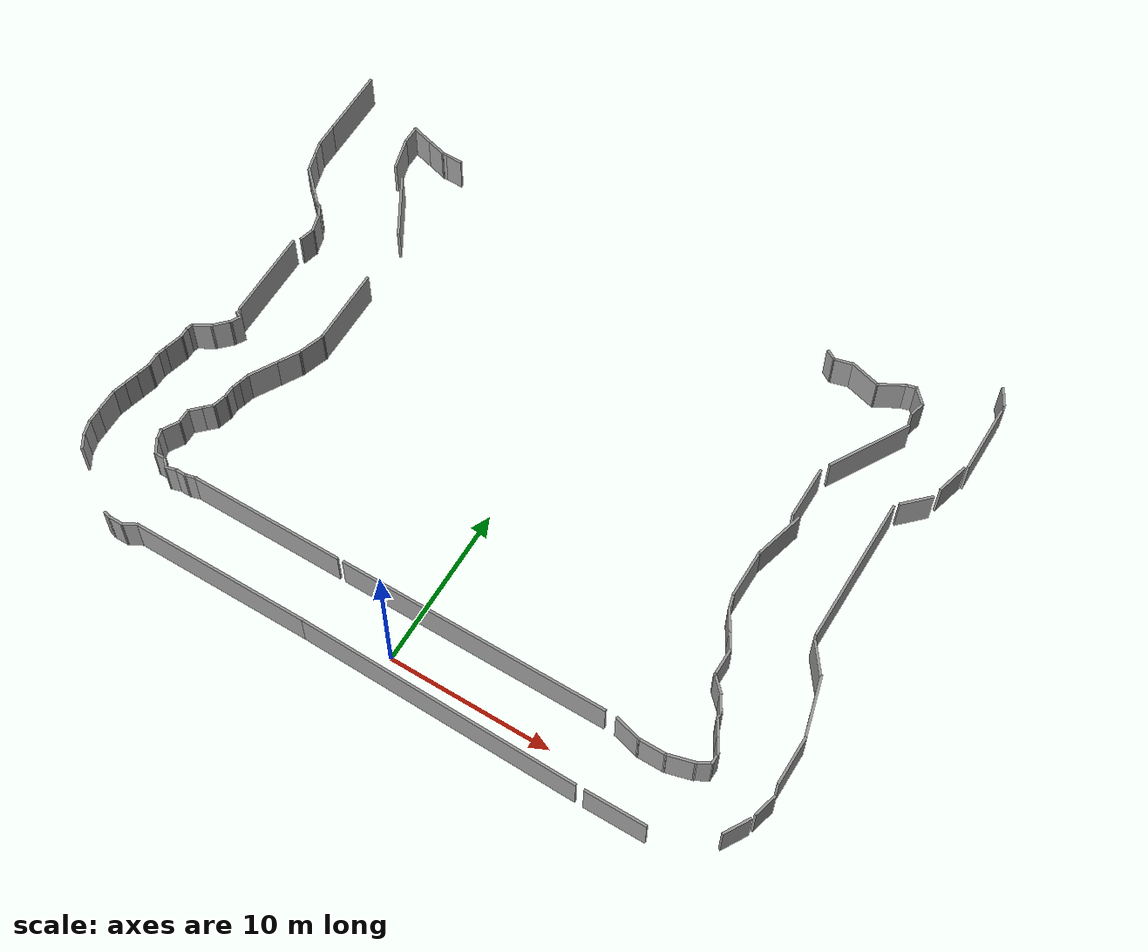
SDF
<sdf version="1.7">
 <world name="default">
  <model name="Untitled">
   <pose>0.06497 14.5161 0 0 -0 0</pose>
   <link name="Wall_10">
    <collision name="Wall_10_Collision">
     <geometry><box><size>11 0.15 2.5</size></box></geometry>
     <pose>0 0 1.25 0 -0 0</pose>
    </collision>
    <visual name="Wall_10_Visual">
     <pose>0 0 1.25 0 -0 0</pose>
     <geometry><box><size>11 0.15 2.5</size></box></geometry>
     <material>
      <script><uri>file://media/materials/scripts/gazebo.material</uri><name>Gazebo/Grey</name></script>
      <ambient>1 1 1 1</ambient>
     </material>
     <meta><layer>0</layer></meta>
    </visual>
    <pose>-10.0432 -15.9074 0 0 -0 3.14159</pose>
   </link>
   <link name="Wall_100">
    <collision name="Wall_100_Collision">
     <geometry><box><size>0.75 0.15 2.5</size></box></geometry>
     <pose>0 0 1.25 0 -0 0</pose>
    </collision>
    <visual name="Wall_100_Visual">
     <pose>0 0 1.25 0 -0 0</pose>
     <geometry><box><size>0.75 0.15 2.5</size></box></geometry>
     <material>
      <script><uri>file://media/materials/scripts/gazebo.material</uri><name>Gazebo/Grey</name></script>
      <ambient>1 1 1 1</ambient>
     </material>
     <meta><layer>0</layer></meta>
    </visual>
    <pose>-17.7497 -10.7957 0 0 -0 1.8326</pose>
   </link>
   <link name="Wall_101">
    <collision name="Wall_101_Collision">
     <geometry><box><size>1.25 0.15 2.5</size></box></geometry>
     <pose>0 0 1.25 0 -0 0</pose>
    </collision>
    <visual name="Wall_101_Visual">
     <pose>0 0 1.25 0 -0 0</pose>
     <geometry><box><size>1.25 0.15 2.5</size></box></geometry>
     <material>
      <script><uri>file://media/materials/scripts/gazebo.material</uri><name>Gazebo/Grey</name></script>
      <ambient>1 1 1 1</ambient>
     </material>
     <meta><layer>0</layer></meta>
    </visual>
    <pose>-17.5523 -10.0296 0 0 -0 1.0472</pose>
   </link>
   <link name="Wall_102">
    <collision name="Wall_102_Collision">
     <geometry><box><size>1 0.15 2.5</size></box></geometry>
     <pose>0 0 1.25 0 -0 0</pose>
    </collision>
    <visual name="Wall_102_Visual">
     <pose>0 0 1.25 0 -0 0</pose>
     <geometry><box><size>1 0.15 2.5</size></box></geometry>
     <material>
      <script><uri>file://media/materials/scripts/gazebo.material</uri><name>Gazebo/Grey</name></script>
      <ambient>1 1 1 1</ambient>
     </material>
     <meta><layer>0</layer></meta>
    </visual>
    <pose>-17.2773 -9.12831 0 0 -0 1.5708</pose>
   </link>
   <link name="Wall_103">
    <collision name="Wall_103_Collision">
     <geometry><box><size>1 0.15 2.5</size></box></geometry>
     <pose>0 0 1.25 0 -0 0</pose>
    </collision>
    <visual name="Wall_103_Visual">
     <pose>0 0 1.25 0 -0 0</pose>
     <geometry><box><size>1 0.15 2.5</size></box></geometry>
     <material>
      <script><uri>file://media/materials/scripts/gazebo.material</uri><name>Gazebo/Grey</name></script>
      <ambient>1 1 1 1</ambient>
     </material>
     <meta><layer>0</layer></meta>
    </visual>
    <pose>-16.9768 -8.40279 0 0 -0 0.785398</pose>
   </link>
   <link name="Wall_104">
    <collision name="Wall_104_Collision">
     <geometry><box><size>0.75 0.15 2.5</size></box></geometry>
     <pose>0 0 1.25 0 -0 0</pose>
    </collision>
    <visual name="Wall_104_Visual">
     <pose>0 0 1.25 0 -0 0</pose>
     <geometry><box><size>0.75 0.15 2.5</size></box></geometry>
     <material>
      <script><uri>file://media/materials/scripts/gazebo.material</uri><name>Gazebo/Grey</name></script>
      <ambient>1 1 1 1</ambient>
     </material>
     <meta><layer>0</layer></meta>
    </visual>
    <pose>-16.4641 -7.89014 0 0 -0 0.785398</pose>
   </link>
   <link name="Wall_105">
    <collision name="Wall_105_Collision">
     <geometry><box><size>1 0.15 2.5</size></box></geometry>
     <pose>0 0 1.25 0 -0 0</pose>
    </collision>
    <visual name="Wall_105_Visual">
     <pose>0 0 1.25 0 -0 0</pose>
     <geometry><box><size>1 0.15 2.5</size></box></geometry>
     <material>
      <script><uri>file://media/materials/scripts/gazebo.material</uri><name>Gazebo/Grey</name></script>
      <ambient>1 1 1 1</ambient>
     </material>
     <meta><layer>0</layer></meta>
    </visual>
    <pose>-16.142 -7.26749 0 0 -0 1.309</pose>
   </link>
   <link name="Wall_106">
    <collision name="Wall_106_Collision">
     <geometry><box><size>0.75 0.15 2.5</size></box></geometry>
     <pose>0 0 1.25 0 -0 0</pose>
    </collision>
    <visual name="Wall_106_Visual">
     <pose>0 0 1.25 0 -0 0</pose>
     <geometry><box><size>0.75 0.15 2.5</size></box></geometry>
     <material>
      <script><uri>file://media/materials/scripts/gazebo.material</uri><name>Gazebo/Grey</name></script>
      <ambient>1 1 1 1</ambient>
     </material>
     <meta><layer>0</layer></meta>
    </visual>
    <pose>-16.032 -6.55697 0 0 -0 1.5708</pose>
   </link>
   <link name="Wall_107">
    <collision name="Wall_107_Collision">
     <geometry><box><size>0.75 0.15 2.5</size></box></geometry>
     <pose>0 0 1.25 0 -0 0</pose>
    </collision>
    <visual name="Wall_107_Visual">
     <pose>0 0 1.25 0 -0 0</pose>
     <geometry><box><size>0.75 0.15 2.5</size></box></geometry>
     <material>
      <script><uri>file://media/materials/scripts/gazebo.material</uri><name>Gazebo/Grey</name></script>
      <ambient>1 1 1 1</ambient>
     </material>
     <meta><layer>0</layer></meta>
    </visual>
    <pose>-15.9544 -5.96719 0 0 -0 1.309</pose>
   </link>
   <link name="Wall_108">
    <collision name="Wall_108_Collision">
     <geometry><box><size>0.75 0.15 2.5</size></box></geometry>
     <pose>0 0 1.25 0 -0 0</pose>
    </collision>
    <visual name="Wall_108_Visual">
     <pose>0 0 1.25 0 -0 0</pose>
     <geometry><box><size>0.75 0.15 2.5</size></box></geometry>
     <material>
      <script><uri>file://media/materials/scripts/gazebo.material</uri><name>Gazebo/Grey</name></script>
      <ambient>1 1 1 1</ambient>
     </material>
     <meta><layer>0</layer></meta>
    </visual>
    <pose>-15.7991 -5.38764 0 0 -0 1.309</pose>
   </link>
   <link name="Wall_109">
    <collision name="Wall_109_Collision">
     <geometry><box><size>2 0.15 2.5</size></box></geometry>
     <pose>0 0 1.25 0 -0 0</pose>
    </collision>
    <visual name="Wall_109_Visual">
     <pose>0 0 1.25 0 -0 0</pose>
     <geometry><box><size>2 0.15 2.5</size></box></geometry>
     <material>
      <script><uri>file://media/materials/scripts/gazebo.material</uri><name>Gazebo/Grey</name></script>
      <ambient>1 1 1 1</ambient>
     </material>
     <meta><layer>0</layer></meta>
    </visual>
    <pose>-15.2589 -4.29678 0 0 -0 1.0472</pose>
   </link>
   <link name="Wall_110">
    <collision name="Wall_110_Collision">
     <geometry><box><size>1.5 0.15 2.5</size></box></geometry>
     <pose>0 0 1.25 0 -0 0</pose>
    </collision>
    <visual name="Wall_110_Visual">
     <pose>0 0 1.25 0 -0 0</pose>
     <geometry><box><size>1.5 0.15 2.5</size></box></geometry>
     <material>
      <script><uri>file://media/materials/scripts/gazebo.material</uri><name>Gazebo/Grey</name></script>
      <ambient>1 1 1 1</ambient>
     </material>
     <meta><layer>0</layer></meta>
    </visual>
    <pose>-14.4589 -2.91114 0 0 -0 1.0472</pose>
   </link>
   <link name="Wall_111">
    <collision name="Wall_111_Collision">
     <geometry><box><size>1.76355 0.15 2.5</size></box></geometry>
     <pose>0 0 1.25 0 -0 0</pose>
    </collision>
    <visual name="Wall_111_Visual">
     <pose>0 0 1.25 0 -0 0</pose>
     <geometry><box><size>1.76355 0.15 2.5</size></box></geometry>
     <material>
      <script><uri>file://media/materials/scripts/gazebo.material</uri><name>Gazebo/Grey</name></script>
      <ambient>1 1 1 1</ambient>
     </material>
     <meta><layer>0</layer></meta>
    </visual>
    <pose>-13.86 -1.56332 0 0 -0 1.24082</pose>
   </link>
   <link name="Wall_12">
    <collision name="Wall_12_Collision">
     <geometry><box><size>9.5 0.15 2.5</size></box></geometry>
     <pose>0 0 1.25 0 -0 0</pose>
    </collision>
    <visual name="Wall_12_Visual">
     <pose>0 0 1.25 0 -0 0</pose>
     <geometry><box><size>9.5 0.15 2.5</size></box></geometry>
     <material>
      <script><uri>file://media/materials/scripts/gazebo.material</uri><name>Gazebo/Grey</name></script>
      <ambient>1 1 1 1</ambient>
     </material>
     <meta><layer>0</layer></meta>
    </visual>
    <pose>-9.78863 -11.9353 0 0 -0 3.14159</pose>
   </link>
   <link name="Wall_14">
    <collision name="Wall_14_Collision">
     <geometry><box><size>4.75 0.15 2.5</size></box></geometry>
     <pose>0 0 1.25 0 -0 0</pose>
    </collision>
    <visual name="Wall_14_Visual">
     <pose>0 0 1.25 0 -0 0</pose>
     <geometry><box><size>4.75 0.15 2.5</size></box></geometry>
     <material>
      <script><uri>file://media/materials/scripts/gazebo.material</uri><name>Gazebo/Grey</name></script>
      <ambient>1 1 1 1</ambient>
     </material>
     <meta><layer>0</layer></meta>
    </visual>
    <pose>-13.5986 1.49993 0 0 -0 -1.5708</pose>
   </link>
   <link name="Wall_18">
    <collision name="Wall_18_Collision">
     <geometry><box><size>4 0.15 2.5</size></box></geometry>
     <pose>0 0 1.25 0 -0 0</pose>
    </collision>
    <visual name="Wall_18_Visual">
     <pose>0 0 1.25 0 -0 0</pose>
     <geometry><box><size>4 0.15 2.5</size></box></geometry>
     <material>
      <script><uri>file://media/materials/scripts/gazebo.material</uri><name>Gazebo/Grey</name></script>
      <ambient>1 1 1 1</ambient>
     </material>
     <meta><layer>0</layer></meta>
    </visual>
    <pose>-14.7401 9.02267 0 0 -0 -1.0472</pose>
   </link>
   <link name="Wall_20">
    <collision name="Wall_20_Collision">
     <geometry><box><size>5.5 0.15 2.5</size></box></geometry>
     <pose>0 0 1.25 0 -0 0</pose>
    </collision>
    <visual name="Wall_20_Visual">
     <pose>0 0 1.25 0 -0 0</pose>
     <geometry><box><size>5.5 0.15 2.5</size></box></geometry>
     <material>
      <script><uri>file://media/materials/scripts/gazebo.material</uri><name>Gazebo/Grey</name></script>
      <ambient>1 1 1 1</ambient>
     </material>
     <meta><layer>0</layer></meta>
    </visual>
    <pose>-18.6727 0.98932 0 0 -0 1.5708</pose>
   </link>
   <link name="Wall_29">
    <collision name="Wall_29_Collision">
     <geometry><box><size>3.25 0.15 2.5</size></box></geometry>
     <pose>0 0 1.25 0 -0 0</pose>
    </collision>
    <visual name="Wall_29_Visual">
     <pose>0 0 1.25 0 -0 0</pose>
     <geometry><box><size>3.25 0.15 2.5</size></box></geometry>
     <material>
      <script><uri>file://media/materials/scripts/gazebo.material</uri><name>Gazebo/Grey</name></script>
      <ambient>1 1 1 1</ambient>
     </material>
     <meta><layer>0</layer></meta>
    </visual>
    <pose>14.5873 1.71446 0 0 -0 1.309</pose>
   </link>
   <link name="Wall_3">
    <collision name="Wall_3_Collision">
     <geometry><box><size>17.3114 0.15 2.5</size></box></geometry>
     <pose>0 0 1.25 0 -0 0</pose>
    </collision>
    <visual name="Wall_3_Visual">
     <pose>0 0 1.25 0 -0 0</pose>
     <geometry><box><size>17.3114 0.15 2.5</size></box></geometry>
     <material>
      <script><uri>file://media/materials/scripts/gazebo.material</uri><name>Gazebo/Grey</name></script>
      <ambient>1 1 1 1</ambient>
     </material>
     <meta><layer>0</layer></meta>
    </visual>
    <pose>3.91438 -16.0702 0 0 -0 3.12262</pose>
   </link>
   <link name="Wall_31">
    <collision name="Wall_31_Collision">
     <geometry><box><size>9 0.15 2.5</size></box></geometry>
     <pose>0 0 1.25 0 -0 0</pose>
    </collision>
    <visual name="Wall_31_Visual">
     <pose>0 0 1.25 0 -0 0</pose>
     <geometry><box><size>9 0.15 2.5</size></box></geometry>
     <material>
      <script><uri>file://media/materials/scripts/gazebo.material</uri><name>Gazebo/Grey</name></script>
      <ambient>1 1 1 1</ambient>
     </material>
     <meta><layer>0</layer></meta>
    </visual>
    <pose>19.0724 2.05712 0 0 -0 -1.5708</pose>
   </link>
   <link name="Wall_33">
    <collision name="Wall_33_Collision">
     <geometry><box><size>2 0.15 2.5</size></box></geometry>
     <pose>0 0 1.25 0 -0 0</pose>
    </collision>
    <visual name="Wall_33_Visual">
     <pose>0 0 1.25 0 -0 0</pose>
     <geometry><box><size>2 0.15 2.5</size></box></geometry>
     <material>
      <script><uri>file://media/materials/scripts/gazebo.material</uri><name>Gazebo/Grey</name></script>
      <ambient>1 1 1 1</ambient>
     </material>
     <meta><layer>0</layer></meta>
    </visual>
    <pose>19.974 7.50746 0 0 -0 0.785398</pose>
   </link>
   <link name="Wall_35">
    <collision name="Wall_35_Collision">
     <geometry><box><size>2 0.15 2.5</size></box></geometry>
     <pose>0 0 1.25 0 -0 0</pose>
    </collision>
    <visual name="Wall_35_Visual">
     <pose>0 0 1.25 0 -0 0</pose>
     <geometry><box><size>2 0.15 2.5</size></box></geometry>
     <material>
      <script><uri>file://media/materials/scripts/gazebo.material</uri><name>Gazebo/Grey</name></script>
      <ambient>1 1 1 1</ambient>
     </material>
     <meta><layer>0</layer></meta>
    </visual>
    <pose>21.0444 9.72694 0 0 -0 1.309</pose>
   </link>
   <link name="Wall_37">
    <collision name="Wall_37_Collision">
     <geometry><box><size>3.25 0.15 2.5</size></box></geometry>
     <pose>0 0 1.25 0 -0 0</pose>
    </collision>
    <visual name="Wall_37_Visual">
     <pose>0 0 1.25 0 -0 0</pose>
     <geometry><box><size>3.25 0.15 2.5</size></box></geometry>
     <material>
      <script><uri>file://media/materials/scripts/gazebo.material</uri><name>Gazebo/Grey</name></script>
      <ambient>1 1 1 1</ambient>
     </material>
     <meta><layer>0</layer></meta>
    </visual>
    <pose>14.6172 4.8145 0 0 -0 1.5708</pose>
   </link>
   <link name="Wall_39">
    <collision name="Wall_39_Collision">
     <geometry><box><size>5.25 0.15 2.5</size></box></geometry>
     <pose>0 0 1.25 0 -0 0</pose>
    </collision>
    <visual name="Wall_39_Visual">
     <pose>0 0 1.25 0 -0 0</pose>
     <geometry><box><size>5.25 0.15 2.5</size></box></geometry>
     <material>
      <script><uri>file://media/materials/scripts/gazebo.material</uri><name>Gazebo/Grey</name></script>
      <ambient>1 1 1 1</ambient>
     </material>
     <meta><layer>0</layer></meta>
    </visual>
    <pose>16.1886 9.22394 0 0 -0 -2.0944</pose>
   </link>
   <link name="Wall_406">
    <collision name="Wall_406_Collision">
     <geometry><box><size>2 0.15 2.5</size></box></geometry>
     <pose>0 0 1.25 0 -0 0</pose>
    </collision>
    <visual name="Wall_406_Visual">
     <pose>0 0 1.25 0 -0 0</pose>
     <geometry><box><size>2 0.15 2.5</size></box></geometry>
     <material>
      <script><uri>file://media/materials/scripts/gazebo.material</uri><name>Gazebo/Grey</name></script>
      <ambient>1 1 1 1</ambient>
     </material>
     <meta><layer>0</layer></meta>
    </visual>
    <pose>-16.7428 12.1226 0 0 -0 1.8326</pose>
   </link>
   <link name="Wall_407">
    <collision name="Wall_407_Collision">
     <geometry><box><size>1.25 0.15 2.5</size></box></geometry>
     <pose>0 0 1.25 0 -0 0</pose>
    </collision>
    <visual name="Wall_407_Visual">
     <pose>0 0 1.25 0 -0 0</pose>
     <geometry><box><size>1.25 0.15 2.5</size></box></geometry>
     <material>
      <script><uri>file://media/materials/scripts/gazebo.material</uri><name>Gazebo/Grey</name></script>
      <ambient>1 1 1 1</ambient>
     </material>
     <meta><layer>0</layer></meta>
    </visual>
    <pose>-16.9822 13.5661 0 0 -0 1.5708</pose>
   </link>
   <link name="Wall_408">
    <collision name="Wall_408_Collision">
     <geometry><box><size>1.5 0.15 2.5</size></box></geometry>
     <pose>0 0 1.25 0 -0 0</pose>
    </collision>
    <visual name="Wall_408_Visual">
     <pose>0 0 1.25 0 -0 0</pose>
     <geometry><box><size>1.5 0.15 2.5</size></box></geometry>
     <material>
      <script><uri>file://media/materials/scripts/gazebo.material</uri><name>Gazebo/Grey</name></script>
      <ambient>1 1 1 1</ambient>
     </material>
     <meta><layer>0</layer></meta>
    </visual>
    <pose>-16.3302 13.9414 0 0 -0 -0.261799</pose>
   </link>
   <link name="Wall_409">
    <collision name="Wall_409_Collision">
     <geometry><box><size>1.25 0.15 2.5</size></box></geometry>
     <pose>0 0 1.25 0 -0 0</pose>
    </collision>
    <visual name="Wall_409_Visual">
     <pose>0 0 1.25 0 -0 0</pose>
     <geometry><box><size>1.25 0.15 2.5</size></box></geometry>
     <material>
      <script><uri>file://media/materials/scripts/gazebo.material</uri><name>Gazebo/Grey</name></script>
      <ambient>1 1 1 1</ambient>
     </material>
     <meta><layer>0</layer></meta>
    </visual>
    <pose>-15.1469 13.6243 0 0 -0 -0.261799</pose>
   </link>
   <link name="Wall_410">
    <collision name="Wall_410_Collision">
     <geometry><box><size>0.5 0.15 2.5</size></box></geometry>
     <pose>0 0 1.25 0 -0 0</pose>
    </collision>
    <visual name="Wall_410_Visual">
     <pose>0 0 1.25 0 -0 0</pose>
     <geometry><box><size>0.5 0.15 2.5</size></box></geometry>
     <material>
      <script><uri>file://media/materials/scripts/gazebo.material</uri><name>Gazebo/Grey</name></script>
      <ambient>1 1 1 1</ambient>
     </material>
     <meta><layer>0</layer></meta>
    </visual>
    <pose>-14.4407 13.482 0 0 -0 0</pose>
   </link>
   <link name="Wall_411">
    <collision name="Wall_411_Collision">
     <geometry><box><size>1 0.15 2.5</size></box></geometry>
     <pose>0 0 1.25 0 -0 0</pose>
    </collision>
    <visual name="Wall_411_Visual">
     <pose>0 0 1.25 0 -0 0</pose>
     <geometry><box><size>1 0.15 2.5</size></box></geometry>
     <material>
      <script><uri>file://media/materials/scripts/gazebo.material</uri><name>Gazebo/Grey</name></script>
      <ambient>1 1 1 1</ambient>
     </material>
     <meta><layer>0</layer></meta>
    </visual>
    <pose>-13.8407 13.482 0 0 -0 0</pose>
   </link>
   <link name="Wall_413">
    <collision name="Wall_413_Collision">
     <geometry><box><size>1 0.15 2.5</size></box></geometry>
     <pose>0 0 1.25 0 -0 0</pose>
    </collision>
    <visual name="Wall_413_Visual">
     <pose>0 0 1.25 0 -0 0</pose>
     <geometry><box><size>1 0.15 2.5</size></box></geometry>
     <material>
      <script><uri>file://media/materials/scripts/gazebo.material</uri><name>Gazebo/Grey</name></script>
      <ambient>1 1 1 1</ambient>
     </material>
     <meta><layer>0</layer></meta>
    </visual>
    <pose>-18.254 4.48336 0 0 -0 1.309</pose>
   </link>
   <link name="Wall_414">
    <collision name="Wall_414_Collision">
     <geometry><box><size>1.25 0.15 2.5</size></box></geometry>
     <pose>0 0 1.25 0 -0 0</pose>
    </collision>
    <visual name="Wall_414_Visual">
     <pose>0 0 1.25 0 -0 0</pose>
     <geometry><box><size>1.25 0.15 2.5</size></box></geometry>
     <material>
      <script><uri>file://media/materials/scripts/gazebo.material</uri><name>Gazebo/Grey</name></script>
      <ambient>1 1 1 1</ambient>
     </material>
     <meta><layer>0</layer></meta>
    </visual>
    <pose>-18.2863 5.42514 0 0 -0 1.8326</pose>
   </link>
   <link name="Wall_415">
    <collision name="Wall_415_Collision">
     <geometry><box><size>0.75 0.15 2.5</size></box></geometry>
     <pose>0 0 1.25 0 -0 0</pose>
    </collision>
    <visual name="Wall_415_Visual">
     <pose>0 0 1.25 0 -0 0</pose>
     <geometry><box><size>0.75 0.15 2.5</size></box></geometry>
     <material>
      <script><uri>file://media/materials/scripts/gazebo.material</uri><name>Gazebo/Grey</name></script>
      <ambient>1 1 1 1</ambient>
     </material>
     <meta><layer>0</layer></meta>
    </visual>
    <pose>-18.5787 6.2162 0 0 -0 2.0944</pose>
   </link>
   <link name="Wall_416">
    <collision name="Wall_416_Collision">
     <geometry><box><size>0.5 0.15 2.5</size></box></geometry>
     <pose>0 0 1.25 0 -0 0</pose>
    </collision>
    <visual name="Wall_416_Visual">
     <pose>0 0 1.25 0 -0 0</pose>
     <geometry><box><size>0.5 0.15 2.5</size></box></geometry>
     <material>
      <script><uri>file://media/materials/scripts/gazebo.material</uri><name>Gazebo/Grey</name></script>
      <ambient>1 1 1 1</ambient>
     </material>
     <meta><layer>0</layer></meta>
    </visual>
    <pose>-18.8803 6.56351 0 0 -0 2.61799</pose>
   </link>
   <link name="Wall_417">
    <collision name="Wall_417_Collision">
     <geometry><box><size>0.75 0.15 2.5</size></box></geometry>
     <pose>0 0 1.25 0 -0 0</pose>
    </collision>
    <visual name="Wall_417_Visual">
     <pose>0 0 1.25 0 -0 0</pose>
     <geometry><box><size>0.75 0.15 2.5</size></box></geometry>
     <material>
      <script><uri>file://media/materials/scripts/gazebo.material</uri><name>Gazebo/Grey</name></script>
      <ambient>1 1 1 1</ambient>
     </material>
     <meta><layer>0</layer></meta>
    </visual>
    <pose>-19.2439 6.86314 0 0 -0 2.35619</pose>
   </link>
   <link name="Wall_418">
    <collision name="Wall_418_Collision">
     <geometry><box><size>2 0.15 2.5</size></box></geometry>
     <pose>0 0 1.25 0 -0 0</pose>
    </collision>
    <visual name="Wall_418_Visual">
     <pose>0 0 1.25 0 -0 0</pose>
     <geometry><box><size>2 0.15 2.5</size></box></geometry>
     <material>
      <script><uri>file://media/materials/scripts/gazebo.material</uri><name>Gazebo/Grey</name></script>
      <ambient>1 1 1 1</ambient>
     </material>
     <meta><layer>0</layer></meta>
    </visual>
    <pose>-20.1101 7.72935 0 0 -0 2.35619</pose>
   </link>
   <link name="Wall_419">
    <collision name="Wall_419_Collision">
     <geometry><box><size>1.25 0.15 2.5</size></box></geometry>
     <pose>0 0 1.25 0 -0 0</pose>
    </collision>
    <visual name="Wall_419_Visual">
     <pose>0 0 1.25 0 -0 0</pose>
     <geometry><box><size>1.25 0.15 2.5</size></box></geometry>
     <material>
      <script><uri>file://media/materials/scripts/gazebo.material</uri><name>Gazebo/Grey</name></script>
      <ambient>1 1 1 1</ambient>
     </material>
     <meta><layer>0</layer></meta>
    </visual>
    <pose>-20.9066 8.91468 0 0 -0 1.8326</pose>
   </link>
   <link name="Wall_42">
    <collision name="Wall_42_Collision">
     <geometry><box><size>4.25 0.15 2.5</size></box></geometry>
     <pose>0 0 1.25 0 -0 0</pose>
    </collision>
    <visual name="Wall_42_Visual">
     <pose>0 0 1.25 0 -0 0</pose>
     <geometry><box><size>4.25 0.15 2.5</size></box></geometry>
     <material>
      <script><uri>file://media/materials/scripts/gazebo.material</uri><name>Gazebo/Grey</name></script>
      <ambient>1 1 1 1</ambient>
     </material>
     <meta><layer>0</layer></meta>
    </visual>
    <pose>21.4551 12.9153 0 0 -0 -1.5708</pose>
   </link>
   <link name="Wall_420">
    <collision name="Wall_420_Collision">
     <geometry><box><size>1 0.15 2.5</size></box></geometry>
     <pose>0 0 1.25 0 -0 0</pose>
    </collision>
    <visual name="Wall_420_Visual">
     <pose>0 0 1.25 0 -0 0</pose>
     <geometry><box><size>1 0.15 2.5</size></box></geometry>
     <material>
      <script><uri>file://media/materials/scripts/gazebo.material</uri><name>Gazebo/Grey</name></script>
      <ambient>1 1 1 1</ambient>
     </material>
     <meta><layer>0</layer></meta>
    </visual>
    <pose>-21.1589 9.85646 0 0 -0 1.8326</pose>
   </link>
   <link name="Wall_421">
    <collision name="Wall_421_Collision">
     <geometry><box><size>1.5 0.15 2.5</size></box></geometry>
     <pose>0 0 1.25 0 -0 0</pose>
    </collision>
    <visual name="Wall_421_Visual">
     <pose>0 0 1.25 0 -0 0</pose>
     <geometry><box><size>1.5 0.15 2.5</size></box></geometry>
     <material>
      <script><uri>file://media/materials/scripts/gazebo.material</uri><name>Gazebo/Grey</name></script>
      <ambient>1 1 1 1</ambient>
     </material>
     <meta><layer>0</layer></meta>
    </visual>
    <pose>-21.2689 10.942 0 0 -0 1.5708</pose>
   </link>
   <link name="Wall_422">
    <collision name="Wall_422_Collision">
     <geometry><box><size>4.25 0.15 2.5</size></box></geometry>
     <pose>0 0 1.25 0 -0 0</pose>
    </collision>
    <visual name="Wall_422_Visual">
     <pose>0 0 1.25 0 -0 0</pose>
     <geometry><box><size>4.25 0.15 2.5</size></box></geometry>
     <material>
      <script><uri>file://media/materials/scripts/gazebo.material</uri><name>Gazebo/Grey</name></script>
      <ambient>1 1 1 1</ambient>
     </material>
     <meta><layer>0</layer></meta>
    </visual>
    <pose>-21.2689 13.667 0 0 -0 1.5708</pose>
   </link>
   <link name="Wall_424">
    <collision name="Wall_424_Collision">
     <geometry><box><size>1 0.15 2.5</size></box></geometry>
     <pose>0 0 1.25 0 -0 0</pose>
    </collision>
    <visual name="Wall_424_Visual">
     <pose>0 0 1.25 0 -0 0</pose>
     <geometry><box><size>1 0.15 2.5</size></box></geometry>
     <material>
      <script><uri>file://media/materials/scripts/gazebo.material</uri><name>Gazebo/Grey</name></script>
      <ambient>1 1 1 1</ambient>
     </material>
     <meta><layer>0</layer></meta>
    </visual>
    <pose>17.3843 12.6415 0 0 -0 1.309</pose>
   </link>
   <link name="Wall_425">
    <collision name="Wall_425_Collision">
     <geometry><box><size>1.25 0.15 2.5</size></box></geometry>
     <pose>0 0 1.25 0 -0 0</pose>
    </collision>
    <visual name="Wall_425_Visual">
     <pose>0 0 1.25 0 -0 0</pose>
     <geometry><box><size>1.25 0.15 2.5</size></box></geometry>
     <material>
      <script><uri>file://media/materials/scripts/gazebo.material</uri><name>Gazebo/Grey</name></script>
      <ambient>1 1 1 1</ambient>
     </material>
     <meta><layer>0</layer></meta>
    </visual>
    <pose>17.1054 13.441 0 0 -0 2.35619</pose>
   </link>
   <link name="Wall_426">
    <collision name="Wall_426_Collision">
     <geometry><box><size>0.75 0.15 2.5</size></box></geometry>
     <pose>0 0 1.25 0 -0 0</pose>
    </collision>
    <visual name="Wall_426_Visual">
     <pose>0 0 1.25 0 -0 0</pose>
     <geometry><box><size>0.75 0.15 2.5</size></box></geometry>
     <material>
      <script><uri>file://media/materials/scripts/gazebo.material</uri><name>Gazebo/Grey</name></script>
      <ambient>1 1 1 1</ambient>
     </material>
     <meta><layer>0</layer></meta>
    </visual>
    <pose>16.4267 13.7522 0 0 -0 -2.87979</pose>
   </link>
   <link name="Wall_427">
    <collision name="Wall_427_Collision">
     <geometry><box><size>1.75 0.15 2.5</size></box></geometry>
     <pose>0 0 1.25 0 -0 0</pose>
    </collision>
    <visual name="Wall_427_Visual">
     <pose>0 0 1.25 0 -0 0</pose>
     <geometry><box><size>1.75 0.15 2.5</size></box></geometry>
     <material>
      <script><uri>file://media/materials/scripts/gazebo.material</uri><name>Gazebo/Grey</name></script>
      <ambient>1 1 1 1</ambient>
     </material>
     <meta><layer>0</layer></meta>
    </visual>
    <pose>15.4442 13.2746 0 0 -0 -2.61799</pose>
   </link>
   <link name="Wall_428">
    <collision name="Wall_428_Collision">
     <geometry><box><size>2 0.15 2.5</size></box></geometry>
     <pose>0 0 1.25 0 -0 0</pose>
    </collision>
    <visual name="Wall_428_Visual">
     <pose>0 0 1.25 0 -0 0</pose>
     <geometry><box><size>2 0.15 2.5</size></box></geometry>
     <material>
      <script><uri>file://media/materials/scripts/gazebo.material</uri><name>Gazebo/Grey</name></script>
      <ambient>1 1 1 1</ambient>
     </material>
     <meta><layer>0</layer></meta>
    </visual>
    <pose>13.8578 13.114 0 0 -0 2.87979</pose>
   </link>
   <link name="Wall_429">
    <collision name="Wall_429_Collision">
     <geometry><box><size>1.25 0.15 2.5</size></box></geometry>
     <pose>0 0 1.25 0 -0 0</pose>
    </collision>
    <visual name="Wall_429_Visual">
     <pose>0 0 1.25 0 -0 0</pose>
     <geometry><box><size>1.25 0.15 2.5</size></box></geometry>
     <material>
      <script><uri>file://media/materials/scripts/gazebo.material</uri><name>Gazebo/Grey</name></script>
      <ambient>1 1 1 1</ambient>
     </material>
     <meta><layer>0</layer></meta>
    </visual>
    <pose>12.4331 13.211 0 0 -0 -2.87979</pose>
   </link>
   <link name="Wall_430">
    <collision name="Wall_430_Collision">
     <geometry><box><size>0.75 0.15 2.5</size></box></geometry>
     <pose>0 0 1.25 0 -0 0</pose>
    </collision>
    <visual name="Wall_430_Visual">
     <pose>0 0 1.25 0 -0 0</pose>
     <geometry><box><size>0.75 0.15 2.5</size></box></geometry>
     <material>
      <script><uri>file://media/materials/scripts/gazebo.material</uri><name>Gazebo/Grey</name></script>
      <ambient>1 1 1 1</ambient>
     </material>
     <meta><layer>0</layer></meta>
    </visual>
    <pose>11.642 13.2187 0 0 -0 2.61799</pose>
   </link>
   <link name="Wall_433">
    <collision name="Wall_433_Collision">
     <geometry><box><size>1.25 0.15 2.5</size></box></geometry>
     <pose>0 0 1.25 0 -0 0</pose>
    </collision>
    <visual name="Wall_433_Visual">
     <pose>0 0 1.25 0 -0 0</pose>
     <geometry><box><size>1.25 0.15 2.5</size></box></geometry>
     <material>
      <script><uri>file://media/materials/scripts/gazebo.material</uri><name>Gazebo/Grey</name></script>
      <ambient>1 1 1 1</ambient>
     </material>
     <meta><layer>0</layer></meta>
    </visual>
    <pose>21.15 15.8561 0 0 -0 2.0944</pose>
   </link>
   <link name="Wall_44">
    <collision name="Wall_44_Collision">
     <geometry><box><size>2.1873 0.15 2.5</size></box></geometry>
     <pose>0 0 1.25 0 -0 0</pose>
    </collision>
    <visual name="Wall_44_Visual">
     <pose>0 0 1.25 0 -0 0</pose>
     <geometry><box><size>2.1873 0.15 2.5</size></box></geometry>
     <material>
      <script><uri>file://media/materials/scripts/gazebo.material</uri><name>Gazebo/Grey</name></script>
      <ambient>1 1 1 1</ambient>
     </material>
     <meta><layer>0</layer></meta>
    </visual>
    <pose>19.7872 -3.54868 0 0 -0 -0.932077</pose>
   </link>
   <link name="Wall_46">
    <collision name="Wall_46_Collision">
     <geometry><box><size>3.75 0.15 2.5</size></box></geometry>
     <pose>0 0 1.25 0 -0 0</pose>
    </collision>
    <visual name="Wall_46_Visual">
     <pose>0 0 1.25 0 -0 0</pose>
     <geometry><box><size>3.75 0.15 2.5</size></box></geometry>
     <material>
      <script><uri>file://media/materials/scripts/gazebo.material</uri><name>Gazebo/Grey</name></script>
      <ambient>1 1 1 1</ambient>
     </material>
     <meta><layer>0</layer></meta>
    </visual>
    <pose>20.9072 -6.10518 0 0 -0 -1.309</pose>
   </link>
   <link name="Wall_48">
    <collision name="Wall_48_Collision">
     <geometry><box><size>3 0.15 2.5</size></box></geometry>
     <pose>0 0 1.25 0 -0 0</pose>
    </collision>
    <visual name="Wall_48_Visual">
     <pose>0 0 1.25 0 -0 0</pose>
     <geometry><box><size>3 0.15 2.5</size></box></geometry>
     <material>
      <script><uri>file://media/materials/scripts/gazebo.material</uri><name>Gazebo/Grey</name></script>
      <ambient>1 1 1 1</ambient>
     </material>
     <meta><layer>0</layer></meta>
    </visual>
    <pose>21.3731 -9.26885 0 0 -0 -1.5708</pose>
   </link>
   <link name="Wall_50">
    <collision name="Wall_50_Collision">
     <geometry><box><size>1.5 0.15 2.5</size></box></geometry>
     <pose>0 0 1.25 0 -0 0</pose>
    </collision>
    <visual name="Wall_50_Visual">
     <pose>0 0 1.25 0 -0 0</pose>
     <geometry><box><size>1.5 0.15 2.5</size></box></geometry>
     <material>
      <script><uri>file://media/materials/scripts/gazebo.material</uri><name>Gazebo/Grey</name></script>
      <ambient>1 1 1 1</ambient>
     </material>
     <meta><layer>0</layer></meta>
    </visual>
    <pose>21.3724 -12.121 0 0 -0 -1.8326</pose>
   </link>
   <link name="Wall_52">
    <collision name="Wall_52_Collision">
     <geometry><box><size>1.75 0.15 2.5</size></box></geometry>
     <pose>0 0 1.25 0 -0 0</pose>
    </collision>
    <visual name="Wall_52_Visual">
     <pose>0 0 1.25 0 -0 0</pose>
     <geometry><box><size>1.75 0.15 2.5</size></box></geometry>
     <material>
      <script><uri>file://media/materials/scripts/gazebo.material</uri><name>Gazebo/Grey</name></script>
      <ambient>1 1 1 1</ambient>
     </material>
     <meta><layer>0</layer></meta>
    </visual>
    <pose>20.6792 -13.8462 0 0 -0 -2.0944</pose>
   </link>
   <link name="Wall_54">
    <collision name="Wall_54_Collision">
     <geometry><box><size>3.75 0.15 2.5</size></box></geometry>
     <pose>0 0 1.25 0 -0 0</pose>
    </collision>
    <visual name="Wall_54_Visual">
     <pose>0 0 1.25 0 -0 0</pose>
     <geometry><box><size>3.75 0.15 2.5</size></box></geometry>
     <material>
      <script><uri>file://media/materials/scripts/gazebo.material</uri><name>Gazebo/Grey</name></script>
      <ambient>1 1 1 1</ambient>
     </material>
     <meta><layer>0</layer></meta>
    </visual>
    <pose>14.9253 -16.2414 0 0 -0 0</pose>
   </link>
   <link name="Wall_56">
    <collision name="Wall_56_Collision">
     <geometry><box><size>3 0.15 2.5</size></box></geometry>
     <pose>0 0 1.25 0 -0 0</pose>
    </collision>
    <visual name="Wall_56_Visual">
     <pose>0 0 1.25 0 -0 0</pose>
     <geometry><box><size>3 0.15 2.5</size></box></geometry>
     <material>
      <script><uri>file://media/materials/scripts/gazebo.material</uri><name>Gazebo/Grey</name></script>
      <ambient>1 1 1 1</ambient>
     </material>
     <meta><layer>0</layer></meta>
    </visual>
    <pose>14.1862 -1.20772 0 0 -0 -1.5708</pose>
   </link>
   <link name="Wall_57">
    <collision name="Wall_57_Collision">
     <geometry><box><size>1 0.15 2.5</size></box></geometry>
     <pose>0 0 1.25 0 -0 0</pose>
    </collision>
    <visual name="Wall_57_Visual">
     <pose>0 0 1.25 0 -0 0</pose>
     <geometry><box><size>1 0.15 2.5</size></box></geometry>
     <material>
      <script><uri>file://media/materials/scripts/gazebo.material</uri><name>Gazebo/Grey</name></script>
      <ambient>1 1 1 1</ambient>
     </material>
     <meta><layer>0</layer></meta>
    </visual>
    <pose>14.2962 -3.04324 0 0 -0 -1.309</pose>
   </link>
   <link name="Wall_58">
    <collision name="Wall_58_Collision">
     <geometry><box><size>1.5 0.15 2.5</size></box></geometry>
     <pose>0 0 1.25 0 -0 0</pose>
    </collision>
    <visual name="Wall_58_Visual">
     <pose>0 0 1.25 0 -0 0</pose>
     <geometry><box><size>1.5 0.15 2.5</size></box></geometry>
     <material>
      <script><uri>file://media/materials/scripts/gazebo.material</uri><name>Gazebo/Grey</name></script>
      <ambient>1 1 1 1</ambient>
     </material>
     <meta><layer>0</layer></meta>
    </visual>
    <pose>14.7436 -4.03833 0 0 -0 -1.0472</pose>
   </link>
   <link name="Wall_59">
    <collision name="Wall_59_Collision">
     <geometry><box><size>1.25 0.15 2.5</size></box></geometry>
     <pose>0 0 1.25 0 -0 0</pose>
    </collision>
    <visual name="Wall_59_Visual">
     <pose>0 0 1.25 0 -0 0</pose>
     <geometry><box><size>1.25 0.15 2.5</size></box></geometry>
     <material>
      <script><uri>file://media/materials/scripts/gazebo.material</uri><name>Gazebo/Grey</name></script>
      <ambient>1 1 1 1</ambient>
     </material>
     <meta><layer>0</layer></meta>
    </visual>
    <pose>15.3561 -5.09921 0 0 -0 -1.0472</pose>
   </link>
   <link name="Wall_60">
    <collision name="Wall_60_Collision">
     <geometry><box><size>1.75 0.15 2.5</size></box></geometry>
     <pose>0 0 1.25 0 -0 0</pose>
    </collision>
    <visual name="Wall_60_Visual">
     <pose>0 0 1.25 0 -0 0</pose>
     <geometry><box><size>1.75 0.15 2.5</size></box></geometry>
     <material>
      <script><uri>file://media/materials/scripts/gazebo.material</uri><name>Gazebo/Grey</name></script>
      <ambient>1 1 1 1</ambient>
     </material>
     <meta><layer>0</layer></meta>
    </visual>
    <pose>15.6311 -6.37552 0 0 -0 -1.5708</pose>
   </link>
   <link name="Wall_61">
    <collision name="Wall_61_Collision">
     <geometry><box><size>1.25 0.15 2.5</size></box></geometry>
     <pose>0 0 1.25 0 -0 0</pose>
    </collision>
    <visual name="Wall_61_Visual">
     <pose>0 0 1.25 0 -0 0</pose>
     <geometry><box><size>1.25 0.15 2.5</size></box></geometry>
     <material>
      <script><uri>file://media/materials/scripts/gazebo.material</uri><name>Gazebo/Grey</name></script>
      <ambient>1 1 1 1</ambient>
     </material>
     <meta><layer>0</layer></meta>
    </visual>
    <pose>16.0201 -7.56443 0 0 -0 -0.785398</pose>
   </link>
   <link name="Wall_62">
    <collision name="Wall_62_Collision">
     <geometry><box><size>1.25 0.15 2.5</size></box></geometry>
     <pose>0 0 1.25 0 -0 0</pose>
    </collision>
    <visual name="Wall_62_Visual">
     <pose>0 0 1.25 0 -0 0</pose>
     <geometry><box><size>1.25 0.15 2.5</size></box></geometry>
     <material>
      <script><uri>file://media/materials/scripts/gazebo.material</uri><name>Gazebo/Grey</name></script>
      <ambient>1 1 1 1</ambient>
     </material>
     <meta><layer>0</layer></meta>
    </visual>
    <pose>16.684 -8.42965 0 0 -0 -1.0472</pose>
   </link>
   <link name="Wall_63">
    <collision name="Wall_63_Collision">
     <geometry><box><size>0.5 0.15 2.5</size></box></geometry>
     <pose>0 0 1.25 0 -0 0</pose>
    </collision>
    <visual name="Wall_63_Visual">
     <pose>0 0 1.25 0 -0 0</pose>
     <geometry><box><size>0.5 0.15 2.5</size></box></geometry>
     <material>
      <script><uri>file://media/materials/scripts/gazebo.material</uri><name>Gazebo/Grey</name></script>
      <ambient>1 1 1 1</ambient>
     </material>
     <meta><layer>0</layer></meta>
    </visual>
    <pose>16.959 -9.08097 0 0 -0 -1.5708</pose>
   </link>
   <link name="Wall_64">
    <collision name="Wall_64_Collision">
     <geometry><box><size>1.25 0.15 2.5</size></box></geometry>
     <pose>0 0 1.25 0 -0 0</pose>
    </collision>
    <visual name="Wall_64_Visual">
     <pose>0 0 1.25 0 -0 0</pose>
     <geometry><box><size>1.25 0.15 2.5</size></box></geometry>
     <material>
      <script><uri>file://media/materials/scripts/gazebo.material</uri><name>Gazebo/Grey</name></script>
      <ambient>1 1 1 1</ambient>
     </material>
     <meta><layer>0</layer></meta>
    </visual>
    <pose>17.234 -9.73228 0 0 -0 -1.0472</pose>
   </link>
   <link name="Wall_65">
    <collision name="Wall_65_Collision">
     <geometry><box><size>1 0.15 2.5</size></box></geometry>
     <pose>0 0 1.25 0 -0 0</pose>
    </collision>
    <visual name="Wall_65_Visual">
     <pose>0 0 1.25 0 -0 0</pose>
     <geometry><box><size>1 0.15 2.5</size></box></geometry>
     <material>
      <script><uri>file://media/materials/scripts/gazebo.material</uri><name>Gazebo/Grey</name></script>
      <ambient>1 1 1 1</ambient>
     </material>
     <meta><layer>0</layer></meta>
    </visual>
    <pose>17.7215 -10.5767 0 0 -0 -1.0472</pose>
   </link>
   <link name="Wall_66">
    <collision name="Wall_66_Collision">
     <geometry><box><size>0.75 0.15 2.5</size></box></geometry>
     <pose>0 0 1.25 0 -0 0</pose>
    </collision>
    <visual name="Wall_66_Visual">
     <pose>0 0 1.25 0 -0 0</pose>
     <geometry><box><size>0.75 0.15 2.5</size></box></geometry>
     <material>
      <script><uri>file://media/materials/scripts/gazebo.material</uri><name>Gazebo/Grey</name></script>
      <ambient>1 1 1 1</ambient>
     </material>
     <meta><layer>0</layer></meta>
    </visual>
    <pose>17.934 -11.2447 0 0 -0 -1.5708</pose>
   </link>
   <link name="Wall_67">
    <collision name="Wall_67_Collision">
     <geometry><box><size>1 0.15 2.5</size></box></geometry>
     <pose>0 0 1.25 0 -0 0</pose>
    </collision>
    <visual name="Wall_67_Visual">
     <pose>0 0 1.25 0 -0 0</pose>
     <geometry><box><size>1 0.15 2.5</size></box></geometry>
     <material>
      <script><uri>file://media/materials/scripts/gazebo.material</uri><name>Gazebo/Grey</name></script>
      <ambient>1 1 1 1</ambient>
     </material>
     <meta><layer>0</layer></meta>
    </visual>
    <pose>17.5659 -11.7572 0 0 -0 -2.61799</pose>
   </link>
   <link name="Wall_68">
    <collision name="Wall_68_Collision">
     <geometry><box><size>1.75 0.15 2.5</size></box></geometry>
     <pose>0 0 1.25 0 -0 0</pose>
    </collision>
    <visual name="Wall_68_Visual">
     <pose>0 0 1.25 0 -0 0</pose>
     <geometry><box><size>1.75 0.15 2.5</size></box></geometry>
     <material>
      <script><uri>file://media/materials/scripts/gazebo.material</uri><name>Gazebo/Grey</name></script>
      <ambient>1 1 1 1</ambient>
     </material>
     <meta><layer>0</layer></meta>
    </visual>
    <pose>16.4251 -12.1768 0 0 -0 -2.87979</pose>
   </link>
   <link name="Wall_69">
    <collision name="Wall_69_Collision">
     <geometry><box><size>1.75 0.15 2.5</size></box></geometry>
     <pose>0 0 1.25 0 -0 0</pose>
    </collision>
    <visual name="Wall_69_Visual">
     <pose>0 0 1.25 0 -0 0</pose>
     <geometry><box><size>1.75 0.15 2.5</size></box></geometry>
     <material>
      <script><uri>file://media/materials/scripts/gazebo.material</uri><name>Gazebo/Grey</name></script>
      <ambient>1 1 1 1</ambient>
     </material>
     <meta><layer>0</layer></meta>
    </visual>
    <pose>14.8524 -12.3838 0 0 -0 3.14159</pose>
   </link>
   <link name="Wall_70">
    <collision name="Wall_70_Collision">
     <geometry><box><size>1.75 0.15 2.5</size></box></geometry>
     <pose>0 0 1.25 0 -0 0</pose>
    </collision>
    <visual name="Wall_70_Visual">
     <pose>0 0 1.25 0 -0 0</pose>
     <geometry><box><size>1.75 0.15 2.5</size></box></geometry>
     <material>
      <script><uri>file://media/materials/scripts/gazebo.material</uri><name>Gazebo/Grey</name></script>
      <ambient>1 1 1 1</ambient>
     </material>
     <meta><layer>0</layer></meta>
    </visual>
    <pose>13.2796 -12.1768 0 0 -0 2.87979</pose>
   </link>
   <link name="Wall_72">
    <collision name="Wall_72_Collision">
     <geometry><box><size>1 0.15 2.5</size></box></geometry>
     <pose>0 0 1.25 0 -0 0</pose>
    </collision>
    <visual name="Wall_72_Visual">
     <pose>0 0 1.25 0 -0 0</pose>
     <geometry><box><size>1 0.15 2.5</size></box></geometry>
     <material>
      <script><uri>file://media/materials/scripts/gazebo.material</uri><name>Gazebo/Grey</name></script>
      <ambient>1 1 1 1</ambient>
     </material>
     <meta><layer>0</layer></meta>
    </visual>
    <pose>-15.8363 -16.1199 0 0 -0 -2.61799</pose>
   </link>
   <link name="Wall_73">
    <collision name="Wall_73_Collision">
     <geometry><box><size>1 0.15 2.5</size></box></geometry>
     <pose>0 0 1.25 0 -0 0</pose>
    </collision>
    <visual name="Wall_73_Visual">
     <pose>0 0 1.25 0 -0 0</pose>
     <geometry><box><size>1 0.15 2.5</size></box></geometry>
     <material>
      <script><uri>file://media/materials/scripts/gazebo.material</uri><name>Gazebo/Grey</name></script>
      <ambient>1 1 1 1</ambient>
     </material>
     <meta><layer>0</layer></meta>
    </visual>
    <pose>-16.6294 -16.3324 0 0 -0 3.14159</pose>
   </link>
   <link name="Wall_74">
    <collision name="Wall_74_Collision">
     <geometry><box><size>0.5 0.15 2.5</size></box></geometry>
     <pose>0 0 1.25 0 -0 0</pose>
    </collision>
    <visual name="Wall_74_Visual">
     <pose>0 0 1.25 0 -0 0</pose>
     <geometry><box><size>0.5 0.15 2.5</size></box></geometry>
     <material>
      <script><uri>file://media/materials/scripts/gazebo.material</uri><name>Gazebo/Grey</name></script>
      <ambient>1 1 1 1</ambient>
     </material>
     <meta><layer>0</layer></meta>
    </visual>
    <pose>-17.2234 -16.2871 0 0 -0 2.87979</pose>
   </link>
   <link name="Wall_77">
    <collision name="Wall_77_Collision">
     <geometry><box><size>1 0.15 2.5</size></box></geometry>
     <pose>0 0 1.25 0 -0 0</pose>
    </collision>
    <visual name="Wall_77_Visual">
     <pose>0 0 1.25 0 -0 0</pose>
     <geometry><box><size>1 0.15 2.5</size></box></geometry>
     <material>
      <script><uri>file://media/materials/scripts/gazebo.material</uri><name>Gazebo/Grey</name></script>
      <ambient>1 1 1 1</ambient>
     </material>
     <meta><layer>0</layer></meta>
    </visual>
    <pose>-21.1146 -13.3137 0 0 -0 2.0944</pose>
   </link>
   <link name="Wall_78">
    <collision name="Wall_78_Collision">
     <geometry><box><size>1 0.15 2.5</size></box></geometry>
     <pose>0 0 1.25 0 -0 0</pose>
    </collision>
    <visual name="Wall_78_Visual">
     <pose>0 0 1.25 0 -0 0</pose>
     <geometry><box><size>1 0.15 2.5</size></box></geometry>
     <material>
      <script><uri>file://media/materials/scripts/gazebo.material</uri><name>Gazebo/Grey</name></script>
      <ambient>1 1 1 1</ambient>
     </material>
     <meta><layer>0</layer></meta>
    </visual>
    <pose>-21.4371 -12.5351 0 0 -0 1.8326</pose>
   </link>
   <link name="Wall_79">
    <collision name="Wall_79_Collision">
     <geometry><box><size>1 0.15 2.5</size></box></geometry>
     <pose>0 0 1.25 0 -0 0</pose>
    </collision>
    <visual name="Wall_79_Visual">
     <pose>0 0 1.25 0 -0 0</pose>
     <geometry><box><size>1 0.15 2.5</size></box></geometry>
     <material>
      <script><uri>file://media/materials/scripts/gazebo.material</uri><name>Gazebo/Grey</name></script>
      <ambient>1 1 1 1</ambient>
     </material>
     <meta><layer>0</layer></meta>
    </visual>
    <pose>-21.5471 -11.6996 0 0 -0 1.5708</pose>
   </link>
   <link name="Wall_8">
    <collision name="Wall_8_Collision">
     <geometry><box><size>16.5 0.15 2.5</size></box></geometry>
     <pose>0 0 1.25 0 -0 0</pose>
    </collision>
    <visual name="Wall_8_Visual">
     <pose>0 0 1.25 0 -0 0</pose>
     <geometry><box><size>16.5 0.15 2.5</size></box></geometry>
     <material>
      <script><uri>file://media/materials/scripts/gazebo.material</uri><name>Gazebo/Grey</name></script>
      <ambient>1 1 1 1</ambient>
     </material>
     <meta><layer>0</layer></meta>
    </visual>
    <pose>3.53072 -11.9262 0 0 -0 0</pose>
   </link>
   <link name="Wall_80">
    <collision name="Wall_80_Collision">
     <geometry><box><size>1.5 0.15 2.5</size></box></geometry>
     <pose>0 0 1.25 0 -0 0</pose>
    </collision>
    <visual name="Wall_80_Visual">
     <pose>0 0 1.25 0 -0 0</pose>
     <geometry><box><size>1.5 0.15 2.5</size></box></geometry>
     <material>
      <script><uri>file://media/materials/scripts/gazebo.material</uri><name>Gazebo/Grey</name></script>
      <ambient>1 1 1 1</ambient>
     </material>
     <meta><layer>0</layer></meta>
    </visual>
    <pose>-21.5471 -10.5996 0 0 -0 1.5708</pose>
   </link>
   <link name="Wall_81">
    <collision name="Wall_81_Collision">
     <geometry><box><size>1 0.15 2.5</size></box></geometry>
     <pose>0 0 1.25 0 -0 0</pose>
    </collision>
    <visual name="Wall_81_Visual">
     <pose>0 0 1.25 0 -0 0</pose>
     <geometry><box><size>1 0.15 2.5</size></box></geometry>
     <material>
      <script><uri>file://media/materials/scripts/gazebo.material</uri><name>Gazebo/Grey</name></script>
      <ambient>1 1 1 1</ambient>
     </material>
     <meta><layer>0</layer></meta>
    </visual>
    <pose>-21.4371 -9.5141 0 0 -0 1.309</pose>
   </link>
   <link name="Wall_82">
    <collision name="Wall_82_Collision">
     <geometry><box><size>1 0.15 2.5</size></box></geometry>
     <pose>0 0 1.25 0 -0 0</pose>
    </collision>
    <visual name="Wall_82_Visual">
     <pose>0 0 1.25 0 -0 0</pose>
     <geometry><box><size>1 0.15 2.5</size></box></geometry>
     <material>
      <script><uri>file://media/materials/scripts/gazebo.material</uri><name>Gazebo/Grey</name></script>
      <ambient>1 1 1 1</ambient>
     </material>
     <meta><layer>0</layer></meta>
    </visual>
    <pose>-21.2171 -8.69306 0 0 -0 1.309</pose>
   </link>
   <link name="Wall_83">
    <collision name="Wall_83_Collision">
     <geometry><box><size>1 0.15 2.5</size></box></geometry>
     <pose>0 0 1.25 0 -0 0</pose>
    </collision>
    <visual name="Wall_83_Visual">
     <pose>0 0 1.25 0 -0 0</pose>
     <geometry><box><size>1 0.15 2.5</size></box></geometry>
     <material>
      <script><uri>file://media/materials/scripts/gazebo.material</uri><name>Gazebo/Grey</name></script>
      <ambient>1 1 1 1</ambient>
     </material>
     <meta><layer>0</layer></meta>
    </visual>
    <pose>-20.9971 -7.87203 0 0 -0 1.309</pose>
   </link>
   <link name="Wall_84">
    <collision name="Wall_84_Collision">
     <geometry><box><size>1 0.15 2.5</size></box></geometry>
     <pose>0 0 1.25 0 -0 0</pose>
    </collision>
    <visual name="Wall_84_Visual">
     <pose>0 0 1.25 0 -0 0</pose>
     <geometry><box><size>1 0.15 2.5</size></box></geometry>
     <material>
      <script><uri>file://media/materials/scripts/gazebo.material</uri><name>Gazebo/Grey</name></script>
      <ambient>1 1 1 1</ambient>
     </material>
     <meta><layer>0</layer></meta>
    </visual>
    <pose>-20.8871 -7.03651 0 0 -0 1.5708</pose>
   </link>
   <link name="Wall_85">
    <collision name="Wall_85_Collision">
     <geometry><box><size>0.75 0.15 2.5</size></box></geometry>
     <pose>0 0 1.25 0 -0 0</pose>
    </collision>
    <visual name="Wall_85_Visual">
     <pose>0 0 1.25 0 -0 0</pose>
     <geometry><box><size>0.75 0.15 2.5</size></box></geometry>
     <material>
      <script><uri>file://media/materials/scripts/gazebo.material</uri><name>Gazebo/Grey</name></script>
      <ambient>1 1 1 1</ambient>
     </material>
     <meta><layer>0</layer></meta>
    </visual>
    <pose>-20.8095 -6.32173 0 0 -0 1.309</pose>
   </link>
   <link name="Wall_86">
    <collision name="Wall_86_Collision">
     <geometry><box><size>1.25 0.15 2.5</size></box></geometry>
     <pose>0 0 1.25 0 -0 0</pose>
    </collision>
    <visual name="Wall_86_Visual">
     <pose>0 0 1.25 0 -0 0</pose>
     <geometry><box><size>1.25 0.15 2.5</size></box></geometry>
     <material>
      <script><uri>file://media/materials/scripts/gazebo.material</uri><name>Gazebo/Grey</name></script>
      <ambient>1 1 1 1</ambient>
     </material>
     <meta><layer>0</layer></meta>
    </visual>
    <pose>-20.5895 -5.50069 0 0 -0 1.309</pose>
   </link>
   <link name="Wall_87">
    <collision name="Wall_87_Collision">
     <geometry><box><size>0.75 0.15 2.5</size></box></geometry>
     <pose>0 0 1.25 0 -0 0</pose>
    </collision>
    <visual name="Wall_87_Visual">
     <pose>0 0 1.25 0 -0 0</pose>
     <geometry><box><size>0.75 0.15 2.5</size></box></geometry>
     <material>
      <script><uri>file://media/materials/scripts/gazebo.material</uri><name>Gazebo/Grey</name></script>
      <ambient>1 1 1 1</ambient>
     </material>
     <meta><layer>0</layer></meta>
    </visual>
    <pose>-20.4471 -4.66943 0 0 -0 1.5708</pose>
   </link>
   <link name="Wall_88">
    <collision name="Wall_88_Collision">
     <geometry><box><size>0.5 0.15 2.5</size></box></geometry>
     <pose>0 0 1.25 0 -0 0</pose>
    </collision>
    <visual name="Wall_88_Visual">
     <pose>0 0 1.25 0 -0 0</pose>
     <geometry><box><size>0.5 0.15 2.5</size></box></geometry>
     <material>
      <script><uri>file://media/materials/scripts/gazebo.material</uri><name>Gazebo/Grey</name></script>
      <ambient>1 1 1 1</ambient>
     </material>
     <meta><layer>0</layer></meta>
    </visual>
    <pose>-20.4018 -4.2004 0 0 -0 1.309</pose>
   </link>
   <link name="Wall_89">
    <collision name="Wall_89_Collision">
     <geometry><box><size>1.25 0.15 2.5</size></box></geometry>
     <pose>0 0 1.25 0 -0 0</pose>
    </collision>
    <visual name="Wall_89_Visual">
     <pose>0 0 1.25 0 -0 0</pose>
     <geometry><box><size>1.25 0.15 2.5</size></box></geometry>
     <material>
      <script><uri>file://media/materials/scripts/gazebo.material</uri><name>Gazebo/Grey</name></script>
      <ambient>1 1 1 1</ambient>
     </material>
     <meta><layer>0</layer></meta>
    </visual>
    <pose>-19.8802 -3.75636 0 0 -0 0.523599</pose>
   </link>
   <link name="Wall_90">
    <collision name="Wall_90_Collision">
     <geometry><box><size>1.25 0.15 2.5</size></box></geometry>
     <pose>0 0 1.25 0 -0 0</pose>
    </collision>
    <visual name="Wall_90_Visual">
     <pose>0 0 1.25 0 -0 0</pose>
     <geometry><box><size>1.25 0.15 2.5</size></box></geometry>
     <material>
      <script><uri>file://media/materials/scripts/gazebo.material</uri><name>Gazebo/Grey</name></script>
      <ambient>1 1 1 1</ambient>
     </material>
     <meta><layer>0</layer></meta>
    </visual>
    <pose>-19.015 -3.09245 0 0 -0 0.785398</pose>
   </link>
   <link name="Wall_91">
    <collision name="Wall_91_Collision">
     <geometry><box><size>0.75 0.15 2.5</size></box></geometry>
     <pose>0 0 1.25 0 -0 0</pose>
    </collision>
    <visual name="Wall_91_Visual">
     <pose>0 0 1.25 0 -0 0</pose>
     <geometry><box><size>0.75 0.15 2.5</size></box></geometry>
     <material>
      <script><uri>file://media/materials/scripts/gazebo.material</uri><name>Gazebo/Grey</name></script>
      <ambient>1 1 1 1</ambient>
     </material>
     <meta><layer>0</layer></meta>
    </visual>
    <pose>-18.4761 -2.44373 0 0 -0 1.0472</pose>
   </link>
   <link name="Wall_92">
    <collision name="Wall_92_Collision">
     <geometry><box><size>0.5 0.15 2.5</size></box></geometry>
     <pose>0 0 1.25 0 -0 0</pose>
    </collision>
    <visual name="Wall_92_Visual">
     <pose>0 0 1.25 0 -0 0</pose>
     <geometry><box><size>0.5 0.15 2.5</size></box></geometry>
     <material>
      <script><uri>file://media/materials/scripts/gazebo.material</uri><name>Gazebo/Grey</name></script>
      <ambient>1 1 1 1</ambient>
     </material>
     <meta><layer>0</layer></meta>
    </visual>
    <pose>-18.4777 -2.09643 0 0 -0 2.61799</pose>
   </link>
   <link name="Wall_94">
    <collision name="Wall_94_Collision">
     <geometry><box><size>0.75 0.15 2.5</size></box></geometry>
     <pose>0 0 1.25 0 -0 0</pose>
    </collision>
    <visual name="Wall_94_Visual">
     <pose>0 0 1.25 0 -0 0</pose>
     <geometry><box><size>0.75 0.15 2.5</size></box></geometry>
     <material>
      <script><uri>file://media/materials/scripts/gazebo.material</uri><name>Gazebo/Grey</name></script>
      <ambient>1 1 1 1</ambient>
     </material>
     <meta><layer>0</layer></meta>
    </visual>
    <pose>-14.7534 -12.0129 0 0 -0 -2.87979</pose>
   </link>
   <link name="Wall_95">
    <collision name="Wall_95_Collision">
     <geometry><box><size>0.75 0.15 2.5</size></box></geometry>
     <pose>0 0 1.25 0 -0 0</pose>
    </collision>
    <visual name="Wall_95_Visual">
     <pose>0 0 1.25 0 -0 0</pose>
     <geometry><box><size>0.75 0.15 2.5</size></box></geometry>
     <material>
      <script><uri>file://media/materials/scripts/gazebo.material</uri><name>Gazebo/Grey</name></script>
      <ambient>1 1 1 1</ambient>
     </material>
     <meta><layer>0</layer></meta>
    </visual>
    <pose>-15.3432 -12.0906 0 0 -0 3.14159</pose>
   </link>
   <link name="Wall_96">
    <collision name="Wall_96_Collision">
     <geometry><box><size>0.75 0.15 2.5</size></box></geometry>
     <pose>0 0 1.25 0 -0 0</pose>
    </collision>
    <visual name="Wall_96_Visual">
     <pose>0 0 1.25 0 -0 0</pose>
     <geometry><box><size>0.75 0.15 2.5</size></box></geometry>
     <material>
      <script><uri>file://media/materials/scripts/gazebo.material</uri><name>Gazebo/Grey</name></script>
      <ambient>1 1 1 1</ambient>
     </material>
     <meta><layer>0</layer></meta>
    </visual>
    <pose>-15.933 -12.1682 0 0 -0 -2.87979</pose>
   </link>
   <link name="Wall_97">
    <collision name="Wall_97_Collision">
     <geometry><box><size>0.75 0.15 2.5</size></box></geometry>
     <pose>0 0 1.25 0 -0 0</pose>
    </collision>
    <visual name="Wall_97_Visual">
     <pose>0 0 1.25 0 -0 0</pose>
     <geometry><box><size>0.75 0.15 2.5</size></box></geometry>
     <material>
      <script><uri>file://media/materials/scripts/gazebo.material</uri><name>Gazebo/Grey</name></script>
      <ambient>1 1 1 1</ambient>
     </material>
     <meta><layer>0</layer></meta>
    </visual>
    <pose>-16.4349 -12.0337 0 0 -0 2.35619</pose>
   </link>
   <link name="Wall_98">
    <collision name="Wall_98_Collision">
     <geometry><box><size>0.75 0.15 2.5</size></box></geometry>
     <pose>0 0 1.25 0 -0 0</pose>
    </collision>
    <visual name="Wall_98_Visual">
     <pose>0 0 1.25 0 -0 0</pose>
     <geometry><box><size>0.75 0.15 2.5</size></box></geometry>
     <material>
      <script><uri>file://media/materials/scripts/gazebo.material</uri><name>Gazebo/Grey</name></script>
      <ambient>1 1 1 1</ambient>
     </material>
     <meta><layer>0</layer></meta>
    </visual>
    <pose>-16.947 -11.8216 0 0 -0 3.14159</pose>
   </link>
   <link name="Wall_99">
    <collision name="Wall_99_Collision">
     <geometry><box><size>1 0.15 2.5</size></box></geometry>
     <pose>0 0 1.25 0 -0 0</pose>
    </collision>
    <visual name="Wall_99_Visual">
     <pose>0 0 1.25 0 -0 0</pose>
     <geometry><box><size>1 0.15 2.5</size></box></geometry>
     <material>
      <script><uri>file://media/materials/scripts/gazebo.material</uri><name>Gazebo/Grey</name></script>
      <ambient>1 1 1 1</ambient>
     </material>
     <meta><layer>0</layer></meta>
    </visual>
    <pose>-17.4595 -11.4536 0 0 -0 2.0944</pose>
   </link>
   <static>1</static>
  </model>
 </world>
</sdf>
